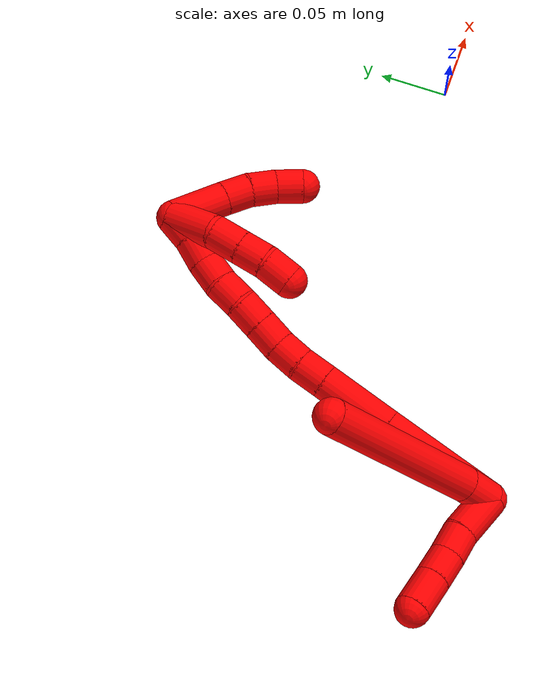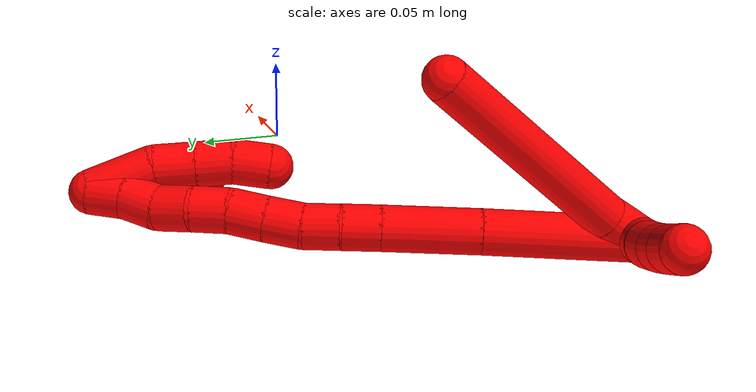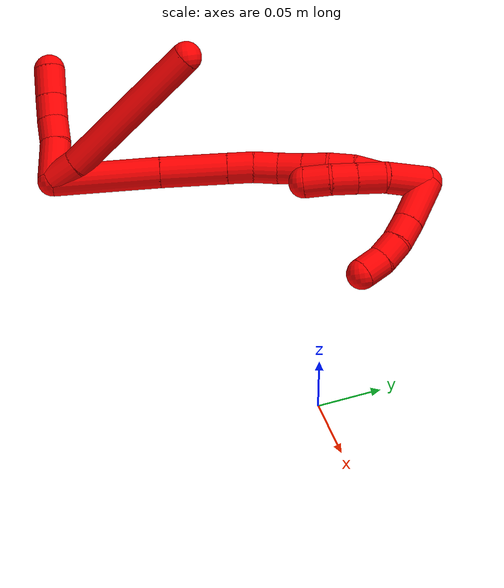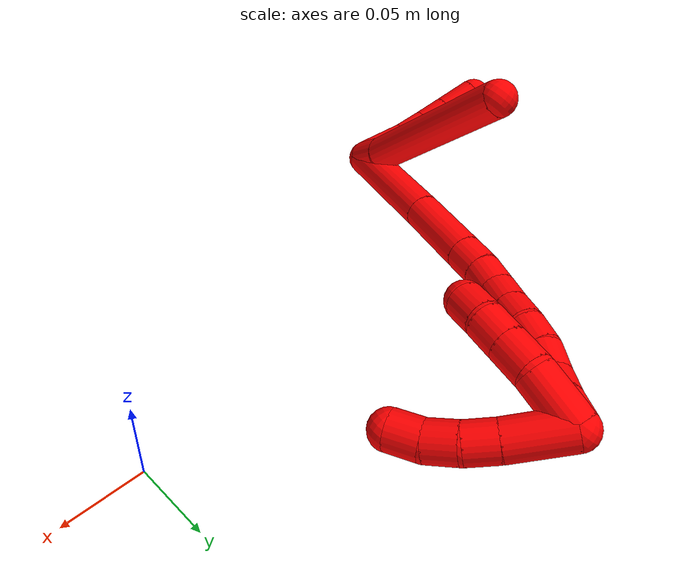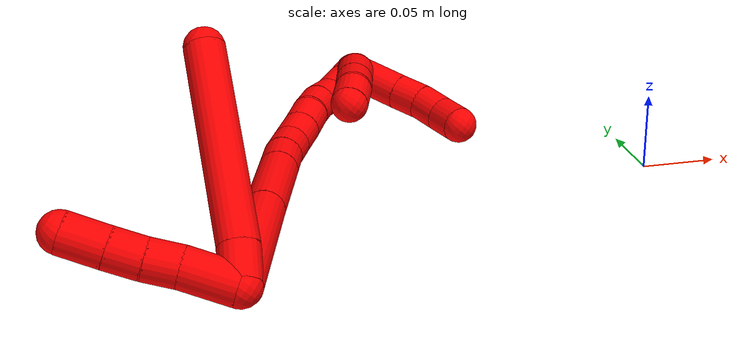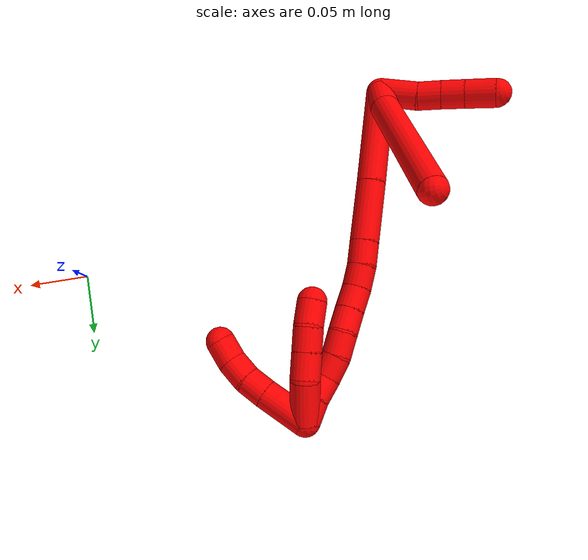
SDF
<sdf version="1.7">
 <world name="default">
  <model name="2">
   <static>0</static>
   <link name="2">
    <collision name="collision-cylinder-e_1_2_8">
     <pose>0.007693 0.007724 0.004858 -1.0094 0.700484 -0.398253</pose>
     <geometry><cylinder><radius>0.0125</radius><length>0.023871</length></cylinder></geometry>
     <surface>
      <friction><ode><mu>1.16</mu><mu2>1.16</mu2><slip1>0</slip1><slip2>0</slip2></ode></friction>
      <contact><ode><kp>1e+06</kp><kd>1</kd><max_vel>0</max_vel><min_depth>0.001</min_depth></ode></contact>
     </surface>
    </collision>
    <visual name="visual-cylinder-e_1_2_8">
     <pose>0.007693 0.007724 0.004858 -1.0094 0.700484 -0.398253</pose>
     <geometry><cylinder><radius>0.0125</radius><length>0.023871</length></cylinder></geometry>
     <material><ambient>1 0 0 1</ambient></material>
    </visual>
    <collision name="collision-cylinder-e_2_8_6">
     <pose>0.054118 0.051794 0.043717 -0.818706 0.661317 -0.295682</pose>
     <geometry><cylinder><radius>0.0125</radius><length>0.126129</length></cylinder></geometry>
     <surface>
      <friction><ode><mu>1.16</mu><mu2>1.16</mu2><slip1>0</slip1><slip2>0</slip2></ode></friction>
      <contact><ode><kp>1e+06</kp><kd>1</kd><max_vel>0</max_vel><min_depth>0.001</min_depth></ode></contact>
     </surface>
    </collision>
    <visual name="visual-cylinder-e_2_8_6">
     <pose>0.054118 0.051794 0.043717 -0.818706 0.661317 -0.295682</pose>
     <geometry><cylinder><radius>0.0125</radius><length>0.126129</length></cylinder></geometry>
     <material><ambient>1 0 0 1</ambient></material>
    </visual>
    <collision name="collision-cylinder-e_1_2_9">
     <pose>-0.005471 0.005971 0.014707 -0.385656 -0.331909 0.065385</pose>
     <geometry><cylinder><radius>0.0125</radius><length>0.033579</length></cylinder></geometry>
     <surface>
      <friction><ode><mu>1.16</mu><mu2>1.16</mu2><slip1>0</slip1><slip2>0</slip2></ode></friction>
      <contact><ode><kp>1e+06</kp><kd>1</kd><max_vel>0</max_vel><min_depth>0.001</min_depth></ode></contact>
     </surface>
    </collision>
    <visual name="visual-cylinder-e_1_2_9">
     <pose>-0.005471 0.005971 0.014707 -0.385656 -0.331909 0.065385</pose>
     <geometry><cylinder><radius>0.0125</radius><length>0.033579</length></cylinder></geometry>
     <material><ambient>1 0 0 1</ambient></material>
    </visual>
    <collision name="collision-cylinder-e_2_9_10">
     <pose>-0.015013 0.013993 0.038461 -0.222955 -0.413541 0.046955</pose>
     <geometry><cylinder><radius>0.0125</radius><length>0.020261</length></cylinder></geometry>
     <surface>
      <friction><ode><mu>1.16</mu><mu2>1.16</mu2><slip1>0</slip1><slip2>0</slip2></ode></friction>
      <contact><ode><kp>1e+06</kp><kd>1</kd><max_vel>0</max_vel><min_depth>0.001</min_depth></ode></contact>
     </surface>
    </collision>
    <visual name="visual-cylinder-e_2_9_10">
     <pose>-0.015013 0.013993 0.038461 -0.222955 -0.413541 0.046955</pose>
     <geometry><cylinder><radius>0.0125</radius><length>0.020261</length></cylinder></geometry>
     <material><ambient>1 0 0 1</ambient></material>
    </visual>
    <collision name="collision-cylinder-e_3_10_11">
     <pose>-0.022436 0.018341 0.056859 -0.240844 -0.335056 0.040922</pose>
     <geometry><cylinder><radius>0.0125</radius><length>0.020391</length></cylinder></geometry>
     <surface>
      <friction><ode><mu>1.16</mu><mu2>1.16</mu2><slip1>0</slip1><slip2>0</slip2></ode></friction>
      <contact><ode><kp>1e+06</kp><kd>1</kd><max_vel>0</max_vel><min_depth>0.001</min_depth></ode></contact>
     </surface>
    </collision>
    <visual name="visual-cylinder-e_3_10_11">
     <pose>-0.022436 0.018341 0.056859 -0.240844 -0.335056 0.040922</pose>
     <geometry><cylinder><radius>0.0125</radius><length>0.020391</length></cylinder></geometry>
     <material><ambient>1 0 0 1</ambient></material>
    </visual>
    <collision name="collision-cylinder-e_4_11_5">
     <pose>-0.029737 0.023622 0.078105 -0.245803 -0.311465 0.038783</pose>
     <geometry><cylinder><radius>0.0125</radius><length>0.025769</length></cylinder></geometry>
     <surface>
      <friction><ode><mu>1.16</mu><mu2>1.16</mu2><slip1>0</slip1><slip2>0</slip2></ode></friction>
      <contact><ode><kp>1e+06</kp><kd>1</kd><max_vel>0</max_vel><min_depth>0.001</min_depth></ode></contact>
     </surface>
    </collision>
    <visual name="visual-cylinder-e_4_11_5">
     <pose>-0.029737 0.023622 0.078105 -0.245803 -0.311465 0.038783</pose>
     <geometry><cylinder><radius>0.0125</radius><length>0.025769</length></cylinder></geometry>
     <material><ambient>1 0 0 1</ambient></material>
    </visual>
    <collision name="collision-cylinder-e_1_2_12">
     <pose>0.019098 0.038007 -0.003406 -1.66016 0.464022 -0.505706</pose>
     <geometry><cylinder><radius>0.0125</radius><length>0.085343</length></cylinder></geometry>
     <surface>
      <friction><ode><mu>1.16</mu><mu2>1.16</mu2><slip1>0</slip1><slip2>0</slip2></ode></friction>
      <contact><ode><kp>1e+06</kp><kd>1</kd><max_vel>0</max_vel><min_depth>0.001</min_depth></ode></contact>
     </surface>
    </collision>
    <visual name="visual-cylinder-e_1_2_12">
     <pose>0.019098 0.038007 -0.003406 -1.66016 0.464022 -0.505706</pose>
     <geometry><cylinder><radius>0.0125</radius><length>0.085343</length></cylinder></geometry>
     <material><ambient>1 0 0 1</ambient></material>
    </visual>
    <collision name="collision-cylinder-e_2_12_13">
     <pose>0.04996 0.099763 -0.009443 -1.68114 0.457529 -0.508853</pose>
     <geometry><cylinder><radius>0.0125</radius><length>0.053267</length></cylinder></geometry>
     <surface>
      <friction><ode><mu>1.16</mu><mu2>1.16</mu2><slip1>0</slip1><slip2>0</slip2></ode></friction>
      <contact><ode><kp>1e+06</kp><kd>1</kd><max_vel>0</max_vel><min_depth>0.001</min_depth></ode></contact>
     </surface>
    </collision>
    <visual name="visual-cylinder-e_2_12_13">
     <pose>0.04996 0.099763 -0.009443 -1.68114 0.457529 -0.508853</pose>
     <geometry><cylinder><radius>0.0125</radius><length>0.053267</length></cylinder></geometry>
     <material><ambient>1 0 0 1</ambient></material>
    </visual>
    <collision name="collision-cylinder-e_3_13_14">
     <pose>0.066223 0.13283 -0.013132 -1.68392 0.447209 -0.498805</pose>
     <geometry><cylinder><radius>0.0125</radius><length>0.020803</length></cylinder></geometry>
     <surface>
      <friction><ode><mu>1.16</mu><mu2>1.16</mu2><slip1>0</slip1><slip2>0</slip2></ode></friction>
      <contact><ode><kp>1e+06</kp><kd>1</kd><max_vel>0</max_vel><min_depth>0.001</min_depth></ode></contact>
     </surface>
    </collision>
    <visual name="visual-cylinder-e_3_13_14">
     <pose>0.066223 0.13283 -0.013132 -1.68392 0.447209 -0.498805</pose>
     <geometry><cylinder><radius>0.0125</radius><length>0.020803</length></cylinder></geometry>
     <material><ambient>1 0 0 1</ambient></material>
    </visual>
    <collision name="collision-cylinder-e_4_14_15">
     <pose>0.075347 0.150799 -0.01627 -1.80665 0.479565 -0.601582</pose>
     <geometry><cylinder><radius>0.0125</radius><length>0.020055</length></cylinder></geometry>
     <surface>
      <friction><ode><mu>1.16</mu><mu2>1.16</mu2><slip1>0</slip1><slip2>0</slip2></ode></friction>
      <contact><ode><kp>1e+06</kp><kd>1</kd><max_vel>0</max_vel><min_depth>0.001</min_depth></ode></contact>
     </surface>
    </collision>
    <visual name="visual-cylinder-e_4_14_15">
     <pose>0.075347 0.150799 -0.01627 -1.80665 0.479565 -0.601582</pose>
     <geometry><cylinder><radius>0.0125</radius><length>0.020055</length></cylinder></geometry>
     <material><ambient>1 0 0 1</ambient></material>
    </visual>
    <collision name="collision-cylinder-e_5_15_16">
     <pose>0.086164 0.167279 -0.020162 -1.79841 0.656292 -0.809366</pose>
     <geometry><cylinder><radius>0.0125</radius><length>0.02029</length></cylinder></geometry>
     <surface>
      <friction><ode><mu>1.16</mu><mu2>1.16</mu2><slip1>0</slip1><slip2>0</slip2></ode></friction>
      <contact><ode><kp>1e+06</kp><kd>1</kd><max_vel>0</max_vel><min_depth>0.001</min_depth></ode></contact>
     </surface>
    </collision>
    <visual name="visual-cylinder-e_5_15_16">
     <pose>0.086164 0.167279 -0.020162 -1.79841 0.656292 -0.809366</pose>
     <geometry><cylinder><radius>0.0125</radius><length>0.02029</length></cylinder></geometry>
     <material><ambient>1 0 0 1</ambient></material>
    </visual>
    <collision name="collision-cylinder-e_6_16_17">
     <pose>0.098599 0.182812 -0.023355 -1.74797 0.673504 -0.792427</pose>
     <geometry><cylinder><radius>0.0125</radius><length>0.020024</length></cylinder></geometry>
     <surface>
      <friction><ode><mu>1.16</mu><mu2>1.16</mu2><slip1>0</slip1><slip2>0</slip2></ode></friction>
      <contact><ode><kp>1e+06</kp><kd>1</kd><max_vel>0</max_vel><min_depth>0.001</min_depth></ode></contact>
     </surface>
    </collision>
    <visual name="visual-cylinder-e_6_16_17">
     <pose>0.098599 0.182812 -0.023355 -1.74797 0.673504 -0.792427</pose>
     <geometry><cylinder><radius>0.0125</radius><length>0.020024</length></cylinder></geometry>
     <material><ambient>1 0 0 1</ambient></material>
    </visual>
    <collision name="collision-cylinder-e_7_17_18">
     <pose>0.109865 0.198947 -0.027134 -1.84803 0.520165 -0.677619</pose>
     <geometry><cylinder><radius>0.0125</radius><length>0.020204</length></cylinder></geometry>
     <surface>
      <friction><ode><mu>1.16</mu><mu2>1.16</mu2><slip1>0</slip1><slip2>0</slip2></ode></friction>
      <contact><ode><kp>1e+06</kp><kd>1</kd><max_vel>0</max_vel><min_depth>0.001</min_depth></ode></contact>
     </surface>
    </collision>
    <visual name="visual-cylinder-e_7_17_18">
     <pose>0.109865 0.198947 -0.027134 -1.84803 0.520165 -0.677619</pose>
     <geometry><cylinder><radius>0.0125</radius><length>0.020204</length></cylinder></geometry>
     <material><ambient>1 0 0 1</ambient></material>
    </visual>
    <collision name="collision-cylinder-e_8_18_19">
     <pose>0.12006 0.214921 -0.033594 -2.06472 0.54333 -0.872725</pose>
     <geometry><cylinder><radius>0.0125</radius><length>0.020014</length></cylinder></geometry>
     <surface>
      <friction><ode><mu>1.16</mu><mu2>1.16</mu2><slip1>0</slip1><slip2>0</slip2></ode></friction>
      <contact><ode><kp>1e+06</kp><kd>1</kd><max_vel>0</max_vel><min_depth>0.001</min_depth></ode></contact>
     </surface>
    </collision>
    <visual name="visual-cylinder-e_8_18_19">
     <pose>0.12006 0.214921 -0.033594 -2.06472 0.54333 -0.872725</pose>
     <geometry><cylinder><radius>0.0125</radius><length>0.020014</length></cylinder></geometry>
     <material><ambient>1 0 0 1</ambient></material>
    </visual>
    <collision name="collision-cylinder-e_9_19_20">
     <pose>0.132575 0.228716 -0.040301 -1.97107 0.82439 -1.16643</pose>
     <geometry><cylinder><radius>0.0125</radius><length>0.02</length></cylinder></geometry>
     <surface>
      <friction><ode><mu>1.16</mu><mu2>1.16</mu2><slip1>0</slip1><slip2>0</slip2></ode></friction>
      <contact><ode><kp>1e+06</kp><kd>1</kd><max_vel>0</max_vel><min_depth>0.001</min_depth></ode></contact>
     </surface>
    </collision>
    <visual name="visual-cylinder-e_9_19_20">
     <pose>0.132575 0.228716 -0.040301 -1.97107 0.82439 -1.16643</pose>
     <geometry><cylinder><radius>0.0125</radius><length>0.02</length></cylinder></geometry>
     <material><ambient>1 0 0 1</ambient></material>
    </visual>
    <collision name="collision-cylinder-e_10_20_1">
     <pose>0.145682 0.242725 -0.045516 -1.89069 0.614566 -0.828039</pose>
     <geometry><cylinder><radius>0.0125</radius><length>0.02</length></cylinder></geometry>
     <surface>
      <friction><ode><mu>1.16</mu><mu2>1.16</mu2><slip1>0</slip1><slip2>0</slip2></ode></friction>
      <contact><ode><kp>1e+06</kp><kd>1</kd><max_vel>0</max_vel><min_depth>0.001</min_depth></ode></contact>
     </surface>
    </collision>
    <visual name="visual-cylinder-e_10_20_1">
     <pose>0.145682 0.242725 -0.045516 -1.89069 0.614566 -0.828039</pose>
     <geometry><cylinder><radius>0.0125</radius><length>0.02</length></cylinder></geometry>
     <material><ambient>1 0 0 1</ambient></material>
    </visual>
    <collision name="collision-cylinder-e_1_1_21">
     <pose>0.154529 0.237549 -0.062939 2.42525 0.15515 0.409505</pose>
     <geometry><cylinder><radius>0.0125</radius><length>0.039868</length></cylinder></geometry>
     <surface>
      <friction><ode><mu>1.16</mu><mu2>1.16</mu2><slip1>0</slip1><slip2>0</slip2></ode></friction>
      <contact><ode><kp>1e+06</kp><kd>1</kd><max_vel>0</max_vel><min_depth>0.001</min_depth></ode></contact>
     </surface>
    </collision>
    <visual name="visual-cylinder-e_1_1_21">
     <pose>0.154529 0.237549 -0.062939 2.42525 0.15515 0.409505</pose>
     <geometry><cylinder><radius>0.0125</radius><length>0.039868</length></cylinder></geometry>
     <material><ambient>1 0 0 1</ambient></material>
    </visual>
    <collision name="collision-cylinder-e_2_21_22">
     <pose>0.159234 0.217564 -0.084718 2.34706 0.162894 0.384295</pose>
     <geometry><cylinder><radius>0.0125</radius><length>0.020034</length></cylinder></geometry>
     <surface>
      <friction><ode><mu>1.16</mu><mu2>1.16</mu2><slip1>0</slip1><slip2>0</slip2></ode></friction>
      <contact><ode><kp>1e+06</kp><kd>1</kd><max_vel>0</max_vel><min_depth>0.001</min_depth></ode></contact>
     </surface>
    </collision>
    <visual name="visual-cylinder-e_2_21_22">
     <pose>0.159234 0.217564 -0.084718 2.34706 0.162894 0.384295</pose>
     <geometry><cylinder><radius>0.0125</radius><length>0.020034</length></cylinder></geometry>
     <material><ambient>1 0 0 1</ambient></material>
    </visual>
    <collision name="collision-cylinder-e_3_22_23">
     <pose>0.160989 0.202486 -0.097655 2.21376 0.013059 0.026099</pose>
     <geometry><cylinder><radius>0.0125</radius><length>0.020056</length></cylinder></geometry>
     <surface>
      <friction><ode><mu>1.16</mu><mu2>1.16</mu2><slip1>0</slip1><slip2>0</slip2></ode></friction>
      <contact><ode><kp>1e+06</kp><kd>1</kd><max_vel>0</max_vel><min_depth>0.001</min_depth></ode></contact>
     </surface>
    </collision>
    <visual name="visual-cylinder-e_3_22_23">
     <pose>0.160989 0.202486 -0.097655 2.21376 0.013059 0.026099</pose>
     <geometry><cylinder><radius>0.0125</radius><length>0.020056</length></cylinder></geometry>
     <material><ambient>1 0 0 1</ambient></material>
    </visual>
    <collision name="collision-cylinder-e_4_23_4">
     <pose>0.161057 0.185274 -0.107668 1.98149 -0.00628 -0.009584</pose>
     <geometry><cylinder><radius>0.0125</radius><length>0.020042</length></cylinder></geometry>
     <surface>
      <friction><ode><mu>1.16</mu><mu2>1.16</mu2><slip1>0</slip1><slip2>0</slip2></ode></friction>
      <contact><ode><kp>1e+06</kp><kd>1</kd><max_vel>0</max_vel><min_depth>0.001</min_depth></ode></contact>
     </surface>
    </collision>
    <visual name="visual-cylinder-e_4_23_4">
     <pose>0.161057 0.185274 -0.107668 1.98149 -0.00628 -0.009584</pose>
     <geometry><cylinder><radius>0.0125</radius><length>0.020042</length></cylinder></geometry>
     <material><ambient>1 0 0 1</ambient></material>
    </visual>
    <collision name="collision-cylinder-e_1_1_24">
     <pose>0.150338 0.233009 -0.043852 1.3331 -0.061673 -0.048521</pose>
     <geometry><cylinder><radius>0.0125</radius><length>0.036023</length></cylinder></geometry>
     <surface>
      <friction><ode><mu>1.16</mu><mu2>1.16</mu2><slip1>0</slip1><slip2>0</slip2></ode></friction>
      <contact><ode><kp>1e+06</kp><kd>1</kd><max_vel>0</max_vel><min_depth>0.001</min_depth></ode></contact>
     </surface>
    </collision>
    <visual name="visual-cylinder-e_1_1_24">
     <pose>0.150338 0.233009 -0.043852 1.3331 -0.061673 -0.048521</pose>
     <geometry><cylinder><radius>0.0125</radius><length>0.036023</length></cylinder></geometry>
     <material><ambient>1 0 0 1</ambient></material>
    </visual>
    <collision name="collision-cylinder-e_2_24_25">
     <pose>0.145457 0.204968 -0.038348 1.45111 -0.34044 -0.302573</pose>
     <geometry><cylinder><radius>0.0125</radius><length>0.022587</length></cylinder></geometry>
     <surface>
      <friction><ode><mu>1.16</mu><mu2>1.16</mu2><slip1>0</slip1><slip2>0</slip2></ode></friction>
      <contact><ode><kp>1e+06</kp><kd>1</kd><max_vel>0</max_vel><min_depth>0.001</min_depth></ode></contact>
     </surface>
    </collision>
    <visual name="visual-cylinder-e_2_24_25">
     <pose>0.145457 0.204968 -0.038348 1.45111 -0.34044 -0.302573</pose>
     <geometry><cylinder><radius>0.0125</radius><length>0.022587</length></cylinder></geometry>
     <material><ambient>1 0 0 1</ambient></material>
    </visual>
    <collision name="collision-cylinder-e_3_25_26">
     <pose>0.138267 0.18481 -0.035945 1.45331 -0.340314 -0.30312</pose>
     <geometry><cylinder><radius>0.0125</radius><length>0.020487</length></cylinder></geometry>
     <surface>
      <friction><ode><mu>1.16</mu><mu2>1.16</mu2><slip1>0</slip1><slip2>0</slip2></ode></friction>
      <contact><ode><kp>1e+06</kp><kd>1</kd><max_vel>0</max_vel><min_depth>0.001</min_depth></ode></contact>
     </surface>
    </collision>
    <visual name="visual-cylinder-e_3_25_26">
     <pose>0.138267 0.18481 -0.035945 1.45331 -0.340314 -0.30312</pose>
     <geometry><cylinder><radius>0.0125</radius><length>0.020487</length></cylinder></geometry>
     <material><ambient>1 0 0 1</ambient></material>
    </visual>
    <collision name="collision-cylinder-e_4_26_3">
     <pose>0.129449 0.16629 -0.03424 1.50676 -0.542829 -0.510623</pose>
     <geometry><cylinder><radius>0.0125</radius><length>0.020903</length></cylinder></geometry>
     <surface>
      <friction><ode><mu>1.16</mu><mu2>1.16</mu2><slip1>0</slip1><slip2>0</slip2></ode></friction>
      <contact><ode><kp>1e+06</kp><kd>1</kd><max_vel>0</max_vel><min_depth>0.001</min_depth></ode></contact>
     </surface>
    </collision>
    <visual name="visual-cylinder-e_4_26_3">
     <pose>0.129449 0.16629 -0.03424 1.50676 -0.542829 -0.510623</pose>
     <geometry><cylinder><radius>0.0125</radius><length>0.020903</length></cylinder></geometry>
     <material><ambient>1 0 0 1</ambient></material>
    </visual>
    <collision name="collision-sphere-3">
     <pose>0.12405 0.157359 -0.033668 0 -0 0</pose>
     <geometry><sphere><radius>0.0125</radius></sphere></geometry>
     <surface>
      <friction><ode><mu>1.16</mu><mu2>1.16</mu2><slip1>0</slip1><slip2>0</slip2></ode></friction>
      <contact><ode><kp>1e+06</kp><kd>1</kd><max_vel>0</max_vel><min_depth>0.001</min_depth></ode></contact>
     </surface>
    </collision>
    <visual name="visual-sphere-3">
     <pose>0.12405 0.157359 -0.033668 0 -0 0</pose>
     <geometry><sphere><radius>0.0125</radius></sphere></geometry>
     <material><ambient>1 0 0 1</ambient></material>
    </visual>
    <collision name="collision-sphere-26">
     <pose>0.134848 0.17522 -0.034813 0 -0 0</pose>
     <geometry><sphere><radius>0.0125</radius></sphere></geometry>
     <surface>
      <friction><ode><mu>1.16</mu><mu2>1.16</mu2><slip1>0</slip1><slip2>0</slip2></ode></friction>
      <contact><ode><kp>1e+06</kp><kd>1</kd><max_vel>0</max_vel><min_depth>0.001</min_depth></ode></contact>
     </surface>
    </collision>
    <visual name="visual-sphere-26">
     <pose>0.134848 0.17522 -0.034813 0 -0 0</pose>
     <geometry><sphere><radius>0.0125</radius></sphere></geometry>
     <material><ambient>1 0 0 1</ambient></material>
    </visual>
    <collision name="collision-sphere-25">
     <pose>0.141686 0.194399 -0.037077 0 -0 0</pose>
     <geometry><sphere><radius>0.0125</radius></sphere></geometry>
     <surface>
      <friction><ode><mu>1.16</mu><mu2>1.16</mu2><slip1>0</slip1><slip2>0</slip2></ode></friction>
      <contact><ode><kp>1e+06</kp><kd>1</kd><max_vel>0</max_vel><min_depth>0.001</min_depth></ode></contact>
     </surface>
    </collision>
    <visual name="visual-sphere-25">
     <pose>0.141686 0.194399 -0.037077 0 -0 0</pose>
     <geometry><sphere><radius>0.0125</radius></sphere></geometry>
     <material><ambient>1 0 0 1</ambient></material>
    </visual>
    <collision name="collision-sphere-24">
     <pose>0.149228 0.215537 -0.039619 0 -0 0</pose>
     <geometry><sphere><radius>0.0125</radius></sphere></geometry>
     <surface>
      <friction><ode><mu>1.16</mu><mu2>1.16</mu2><slip1>0</slip1><slip2>0</slip2></ode></friction>
      <contact><ode><kp>1e+06</kp><kd>1</kd><max_vel>0</max_vel><min_depth>0.001</min_depth></ode></contact>
     </surface>
    </collision>
    <visual name="visual-sphere-24">
     <pose>0.149228 0.215537 -0.039619 0 -0 0</pose>
     <geometry><sphere><radius>0.0125</radius></sphere></geometry>
     <material><ambient>1 0 0 1</ambient></material>
    </visual>
    <collision name="collision-sphere-4">
     <pose>0.160994 0.176086 -0.111669 0 -0 0</pose>
     <geometry><sphere><radius>0.0125</radius></sphere></geometry>
     <surface>
      <friction><ode><mu>1.16</mu><mu2>1.16</mu2><slip1>0</slip1><slip2>0</slip2></ode></friction>
      <contact><ode><kp>1e+06</kp><kd>1</kd><max_vel>0</max_vel><min_depth>0.001</min_depth></ode></contact>
     </surface>
    </collision>
    <visual name="visual-sphere-4">
     <pose>0.160994 0.176086 -0.111669 0 -0 0</pose>
     <geometry><sphere><radius>0.0125</radius></sphere></geometry>
     <material><ambient>1 0 0 1</ambient></material>
    </visual>
    <collision name="collision-sphere-23">
     <pose>0.16112 0.194461 -0.103667 0 -0 0</pose>
     <geometry><sphere><radius>0.0125</radius></sphere></geometry>
     <surface>
      <friction><ode><mu>1.16</mu><mu2>1.16</mu2><slip1>0</slip1><slip2>0</slip2></ode></friction>
      <contact><ode><kp>1e+06</kp><kd>1</kd><max_vel>0</max_vel><min_depth>0.001</min_depth></ode></contact>
     </surface>
    </collision>
    <visual name="visual-sphere-23">
     <pose>0.16112 0.194461 -0.103667 0 -0 0</pose>
     <geometry><sphere><radius>0.0125</radius></sphere></geometry>
     <material><ambient>1 0 0 1</ambient></material>
    </visual>
    <collision name="collision-sphere-22">
     <pose>0.160858 0.210511 -0.091644 0 -0 0</pose>
     <geometry><sphere><radius>0.0125</radius></sphere></geometry>
     <surface>
      <friction><ode><mu>1.16</mu><mu2>1.16</mu2><slip1>0</slip1><slip2>0</slip2></ode></friction>
      <contact><ode><kp>1e+06</kp><kd>1</kd><max_vel>0</max_vel><min_depth>0.001</min_depth></ode></contact>
     </surface>
    </collision>
    <visual name="visual-sphere-22">
     <pose>0.160858 0.210511 -0.091644 0 -0 0</pose>
     <geometry><sphere><radius>0.0125</radius></sphere></geometry>
     <material><ambient>1 0 0 1</ambient></material>
    </visual>
    <collision name="collision-sphere-21">
     <pose>0.157609 0.224617 -0.077793 0 -0 0</pose>
     <geometry><sphere><radius>0.0125</radius></sphere></geometry>
     <surface>
      <friction><ode><mu>1.16</mu><mu2>1.16</mu2><slip1>0</slip1><slip2>0</slip2></ode></friction>
      <contact><ode><kp>1e+06</kp><kd>1</kd><max_vel>0</max_vel><min_depth>0.001</min_depth></ode></contact>
     </surface>
    </collision>
    <visual name="visual-sphere-21">
     <pose>0.157609 0.224617 -0.077793 0 -0 0</pose>
     <geometry><sphere><radius>0.0125</radius></sphere></geometry>
     <material><ambient>1 0 0 1</ambient></material>
    </visual>
    <collision name="collision-sphere-1">
     <pose>0.151448 0.250481 -0.048085 0 -0 0</pose>
     <geometry><sphere><radius>0.0125</radius></sphere></geometry>
     <surface>
      <friction><ode><mu>1.16</mu><mu2>1.16</mu2><slip1>0</slip1><slip2>0</slip2></ode></friction>
      <contact><ode><kp>1e+06</kp><kd>1</kd><max_vel>0</max_vel><min_depth>0.001</min_depth></ode></contact>
     </surface>
    </collision>
    <visual name="visual-sphere-1">
     <pose>0.151448 0.250481 -0.048085 0 -0 0</pose>
     <geometry><sphere><radius>0.0125</radius></sphere></geometry>
     <material><ambient>1 0 0 1</ambient></material>
    </visual>
    <collision name="collision-sphere-11">
     <pose>-0.025789 0.020637 0.066209 0 -0 0</pose>
     <geometry><sphere><radius>0.0125</radius></sphere></geometry>
     <surface>
      <friction><ode><mu>1.16</mu><mu2>1.16</mu2><slip1>0</slip1><slip2>0</slip2></ode></friction>
      <contact><ode><kp>1e+06</kp><kd>1</kd><max_vel>0</max_vel><min_depth>0.001</min_depth></ode></contact>
     </surface>
    </collision>
    <visual name="visual-sphere-11">
     <pose>-0.025789 0.020637 0.066209 0 -0 0</pose>
     <geometry><sphere><radius>0.0125</radius></sphere></geometry>
     <material><ambient>1 0 0 1</ambient></material>
    </visual>
    <collision name="collision-sphere-10">
     <pose>-0.019084 0.016044 0.047508 0 -0 0</pose>
     <geometry><sphere><radius>0.0125</radius></sphere></geometry>
     <surface>
      <friction><ode><mu>1.16</mu><mu2>1.16</mu2><slip1>0</slip1><slip2>0</slip2></ode></friction>
      <contact><ode><kp>1e+06</kp><kd>1</kd><max_vel>0</max_vel><min_depth>0.001</min_depth></ode></contact>
     </surface>
    </collision>
    <visual name="visual-sphere-10">
     <pose>-0.019084 0.016044 0.047508 0 -0 0</pose>
     <geometry><sphere><radius>0.0125</radius></sphere></geometry>
     <material><ambient>1 0 0 1</ambient></material>
    </visual>
    <collision name="collision-sphere-6">
     <pose>0.09285 0.088139 0.077718 0 -0 0</pose>
     <geometry><sphere><radius>0.0125</radius></sphere></geometry>
     <surface>
      <friction><ode><mu>1.16</mu><mu2>1.16</mu2><slip1>0</slip1><slip2>0</slip2></ode></friction>
      <contact><ode><kp>1e+06</kp><kd>1</kd><max_vel>0</max_vel><min_depth>0.001</min_depth></ode></contact>
     </surface>
    </collision>
    <visual name="visual-sphere-6">
     <pose>0.09285 0.088139 0.077718 0 -0 0</pose>
     <geometry><sphere><radius>0.0125</radius></sphere></geometry>
     <material><ambient>1 0 0 1</ambient></material>
    </visual>
    <collision name="collision-sphere-9">
     <pose>-0.010942 0.011942 0.029414 0 -0 0</pose>
     <geometry><sphere><radius>0.0125</radius></sphere></geometry>
     <surface>
      <friction><ode><mu>1.16</mu><mu2>1.16</mu2><slip1>0</slip1><slip2>0</slip2></ode></friction>
      <contact><ode><kp>1e+06</kp><kd>1</kd><max_vel>0</max_vel><min_depth>0.001</min_depth></ode></contact>
     </surface>
    </collision>
    <visual name="visual-sphere-9">
     <pose>-0.010942 0.011942 0.029414 0 -0 0</pose>
     <geometry><sphere><radius>0.0125</radius></sphere></geometry>
     <material><ambient>1 0 0 1</ambient></material>
    </visual>
    <collision name="collision-sphere-2">
     <geometry><sphere><radius>0.0125</radius></sphere></geometry>
     <surface>
      <friction><ode><mu>1.16</mu><mu2>1.16</mu2><slip1>0</slip1><slip2>0</slip2></ode></friction>
      <contact><ode><kp>1e+06</kp><kd>1</kd><max_vel>0</max_vel><min_depth>0.001</min_depth></ode></contact>
     </surface>
    </collision>
    <visual name="visual-sphere-2">
     <geometry><sphere><radius>0.0125</radius></sphere></geometry>
     <material><ambient>1 0 0 1</ambient></material>
    </visual>
    <collision name="collision-sphere-19">
     <pose>0.125233 0.222463 -0.037655 0 -0 0</pose>
     <geometry><sphere><radius>0.0125</radius></sphere></geometry>
     <surface>
      <friction><ode><mu>1.16</mu><mu2>1.16</mu2><slip1>0</slip1><slip2>0</slip2></ode></friction>
      <contact><ode><kp>1e+06</kp><kd>1</kd><max_vel>0</max_vel><min_depth>0.001</min_depth></ode></contact>
     </surface>
    </collision>
    <visual name="visual-sphere-19">
     <pose>0.125233 0.222463 -0.037655 0 -0 0</pose>
     <geometry><sphere><radius>0.0125</radius></sphere></geometry>
     <material><ambient>1 0 0 1</ambient></material>
    </visual>
    <collision name="collision-sphere-8">
     <pose>0.015387 0.015449 0.009716 0 -0 0</pose>
     <geometry><sphere><radius>0.0125</radius></sphere></geometry>
     <surface>
      <friction><ode><mu>1.16</mu><mu2>1.16</mu2><slip1>0</slip1><slip2>0</slip2></ode></friction>
      <contact><ode><kp>1e+06</kp><kd>1</kd><max_vel>0</max_vel><min_depth>0.001</min_depth></ode></contact>
     </surface>
    </collision>
    <visual name="visual-sphere-8">
     <pose>0.015387 0.015449 0.009716 0 -0 0</pose>
     <geometry><sphere><radius>0.0125</radius></sphere></geometry>
     <material><ambient>1 0 0 1</ambient></material>
    </visual>
    <collision name="collision-sphere-5">
     <pose>-0.033686 0.026606 0.090002 0 -0 0</pose>
     <geometry><sphere><radius>0.0125</radius></sphere></geometry>
     <surface>
      <friction><ode><mu>1.16</mu><mu2>1.16</mu2><slip1>0</slip1><slip2>0</slip2></ode></friction>
      <contact><ode><kp>1e+06</kp><kd>1</kd><max_vel>0</max_vel><min_depth>0.001</min_depth></ode></contact>
     </surface>
    </collision>
    <visual name="visual-sphere-5">
     <pose>-0.033686 0.026606 0.090002 0 -0 0</pose>
     <geometry><sphere><radius>0.0125</radius></sphere></geometry>
     <material><ambient>1 0 0 1</ambient></material>
    </visual>
    <collision name="collision-sphere-12">
     <pose>0.038195 0.076014 -0.006811 0 -0 0</pose>
     <geometry><sphere><radius>0.0125</radius></sphere></geometry>
     <surface>
      <friction><ode><mu>1.16</mu><mu2>1.16</mu2><slip1>0</slip1><slip2>0</slip2></ode></friction>
      <contact><ode><kp>1e+06</kp><kd>1</kd><max_vel>0</max_vel><min_depth>0.001</min_depth></ode></contact>
     </surface>
    </collision>
    <visual name="visual-sphere-12">
     <pose>0.038195 0.076014 -0.006811 0 -0 0</pose>
     <geometry><sphere><radius>0.0125</radius></sphere></geometry>
     <material><ambient>1 0 0 1</ambient></material>
    </visual>
    <collision name="collision-sphere-13">
     <pose>0.061725 0.123512 -0.012074 0 -0 0</pose>
     <geometry><sphere><radius>0.0125</radius></sphere></geometry>
     <surface>
      <friction><ode><mu>1.16</mu><mu2>1.16</mu2><slip1>0</slip1><slip2>0</slip2></ode></friction>
      <contact><ode><kp>1e+06</kp><kd>1</kd><max_vel>0</max_vel><min_depth>0.001</min_depth></ode></contact>
     </surface>
    </collision>
    <visual name="visual-sphere-13">
     <pose>0.061725 0.123512 -0.012074 0 -0 0</pose>
     <geometry><sphere><radius>0.0125</radius></sphere></geometry>
     <material><ambient>1 0 0 1</ambient></material>
    </visual>
    <collision name="collision-sphere-14">
     <pose>0.070721 0.142149 -0.014191 0 -0 0</pose>
     <geometry><sphere><radius>0.0125</radius></sphere></geometry>
     <surface>
      <friction><ode><mu>1.16</mu><mu2>1.16</mu2><slip1>0</slip1><slip2>0</slip2></ode></friction>
      <contact><ode><kp>1e+06</kp><kd>1</kd><max_vel>0</max_vel><min_depth>0.001</min_depth></ode></contact>
     </surface>
    </collision>
    <visual name="visual-sphere-14">
     <pose>0.070721 0.142149 -0.014191 0 -0 0</pose>
     <geometry><sphere><radius>0.0125</radius></sphere></geometry>
     <material><ambient>1 0 0 1</ambient></material>
    </visual>
    <collision name="collision-sphere-15">
     <pose>0.079974 0.159449 -0.018349 0 -0 0</pose>
     <geometry><sphere><radius>0.0125</radius></sphere></geometry>
     <surface>
      <friction><ode><mu>1.16</mu><mu2>1.16</mu2><slip1>0</slip1><slip2>0</slip2></ode></friction>
      <contact><ode><kp>1e+06</kp><kd>1</kd><max_vel>0</max_vel><min_depth>0.001</min_depth></ode></contact>
     </surface>
    </collision>
    <visual name="visual-sphere-15">
     <pose>0.079974 0.159449 -0.018349 0 -0 0</pose>
     <geometry><sphere><radius>0.0125</radius></sphere></geometry>
     <material><ambient>1 0 0 1</ambient></material>
    </visual>
    <collision name="collision-sphere-16">
     <pose>0.092355 0.175109 -0.021976 0 -0 0</pose>
     <geometry><sphere><radius>0.0125</radius></sphere></geometry>
     <surface>
      <friction><ode><mu>1.16</mu><mu2>1.16</mu2><slip1>0</slip1><slip2>0</slip2></ode></friction>
      <contact><ode><kp>1e+06</kp><kd>1</kd><max_vel>0</max_vel><min_depth>0.001</min_depth></ode></contact>
     </surface>
    </collision>
    <visual name="visual-sphere-16">
     <pose>0.092355 0.175109 -0.021976 0 -0 0</pose>
     <geometry><sphere><radius>0.0125</radius></sphere></geometry>
     <material><ambient>1 0 0 1</ambient></material>
    </visual>
    <collision name="collision-sphere-17">
     <pose>0.104844 0.190516 -0.024735 0 -0 0</pose>
     <geometry><sphere><radius>0.0125</radius></sphere></geometry>
     <surface>
      <friction><ode><mu>1.16</mu><mu2>1.16</mu2><slip1>0</slip1><slip2>0</slip2></ode></friction>
      <contact><ode><kp>1e+06</kp><kd>1</kd><max_vel>0</max_vel><min_depth>0.001</min_depth></ode></contact>
     </surface>
    </collision>
    <visual name="visual-sphere-17">
     <pose>0.104844 0.190516 -0.024735 0 -0 0</pose>
     <geometry><sphere><radius>0.0125</radius></sphere></geometry>
     <material><ambient>1 0 0 1</ambient></material>
    </visual>
    <collision name="collision-sphere-18">
     <pose>0.114887 0.207379 -0.029533 0 -0 0</pose>
     <geometry><sphere><radius>0.0125</radius></sphere></geometry>
     <surface>
      <friction><ode><mu>1.16</mu><mu2>1.16</mu2><slip1>0</slip1><slip2>0</slip2></ode></friction>
      <contact><ode><kp>1e+06</kp><kd>1</kd><max_vel>0</max_vel><min_depth>0.001</min_depth></ode></contact>
     </surface>
    </collision>
    <visual name="visual-sphere-18">
     <pose>0.114887 0.207379 -0.029533 0 -0 0</pose>
     <geometry><sphere><radius>0.0125</radius></sphere></geometry>
     <material><ambient>1 0 0 1</ambient></material>
    </visual>
    <collision name="collision-sphere-20">
     <pose>0.139916 0.234969 -0.042947 0 -0 0</pose>
     <geometry><sphere><radius>0.0125</radius></sphere></geometry>
     <surface>
      <friction><ode><mu>1.16</mu><mu2>1.16</mu2><slip1>0</slip1><slip2>0</slip2></ode></friction>
      <contact><ode><kp>1e+06</kp><kd>1</kd><max_vel>0</max_vel><min_depth>0.001</min_depth></ode></contact>
     </surface>
    </collision>
    <visual name="visual-sphere-20">
     <pose>0.139916 0.234969 -0.042947 0 -0 0</pose>
     <geometry><sphere><radius>0.0125</radius></sphere></geometry>
     <material><ambient>1 0 0 1</ambient></material>
    </visual>
    <inertial>
     <pose>0.075247 0.118964 -0.009803 0 -0 0</pose>
     <mass>0.75</mass>
     <inertia>
      <ixx>0.000162</ixx>
      <ixy>0</ixy>
      <ixz>0</ixz>
      <iyy>9.3e-05</iyy>
      <iyz>0</iyz>
      <izz>-0.000292</izz>
     </inertia>
    </inertial>
   </link>
   <pose>-0.283836 -0.121156 0.011535 -0.323317 -0.787816 0.317716</pose>
  </model>
 </world>
</sdf>
